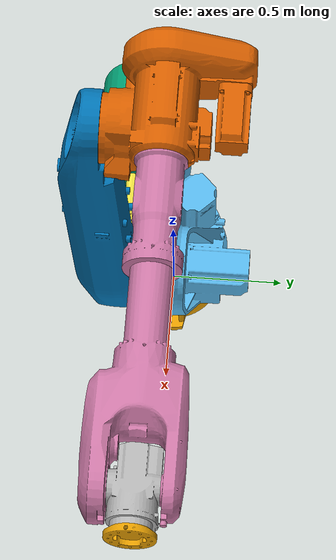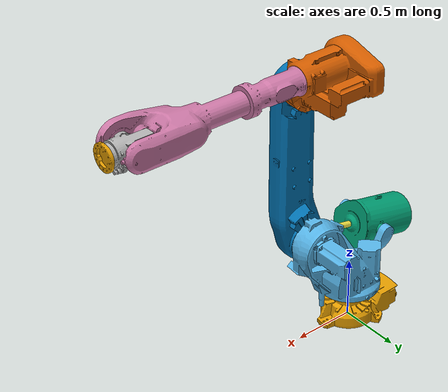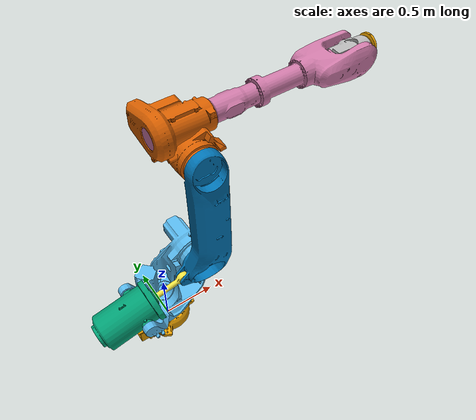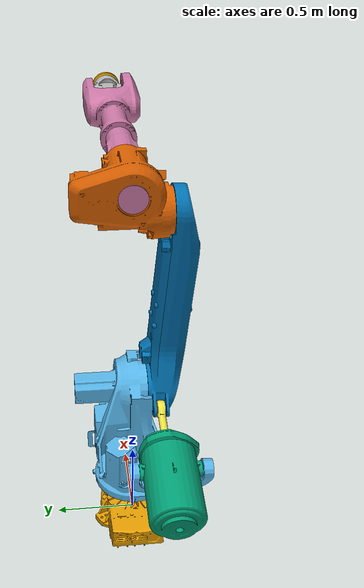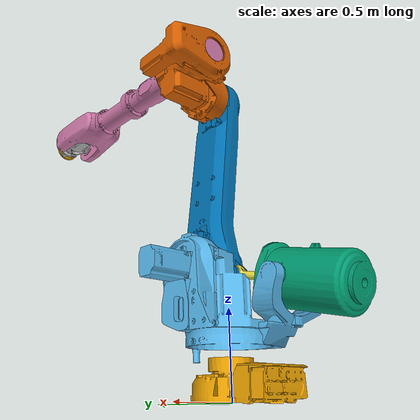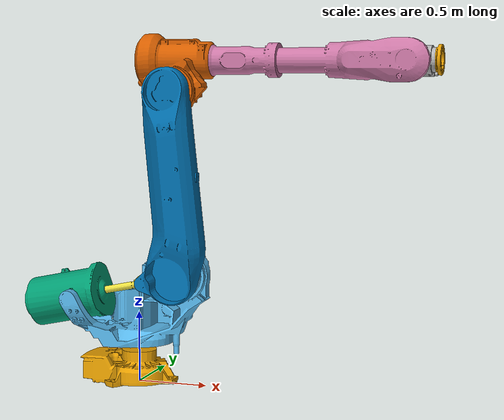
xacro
<?xml version="1.0" ?>
<robot name="abb_irb6700_150_320" xmlns:xacro="http://ros.org/wiki/xacro">
  <xacro:arg name="use_fake_hardware" default="true"/>
  <xacro:property name="use_fake_hardware" value="$(arg use_fake_hardware)"/>
  <xacro:arg name="rws_ip" default="None"/>
  <xacro:property name="rws_ip" value="$(arg rws_ip)"/>
  <xacro:arg name="rws_port" default="80"/>
  <xacro:property name="rws_port" value="$(arg rws_port)"/>
  <xacro:arg name="configure_via_rws" default="true"/>
  <xacro:property name="configure_via_rws" value="$(arg configure_via_rws)"/>

  <!-- Includo il file macro specifico della variante 150kg 320cm -->
  <xacro:include filename="$(find abb_irb6700_support)/urdf/irb6700_150_320_macro.xacro"/>

  <!-- Istanzio la macro senza prefisso -->
  <xacro:abb_irb6700_150_320 prefix=""/>

  <!-- ros2_control -->
  <xacro:include filename="$(find abb_irb6700_support)/urdf/irb6700.ros2_control.xacro" />
  <xacro:abb_ros2_control
    name="ABBMultiInterfaceHardware"
    prefix=""
    use_fake_hardware="${use_fake_hardware}"
    rws_ip="${rws_ip}"
    rws_port="${rws_port}"
    configure_via_rws="${configure_via_rws}"/>
</robot>

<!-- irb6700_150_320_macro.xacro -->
<robot xmlns:xacro="http://ros.org/wiki/xacro">
  <xacro:macro name="abb_irb6700_150_320" params="prefix">
    <xacro:include filename="$(find abb_resources)/urdf/common_materials.xacro"/>

    <!-- link list -->
    <link name="${prefix}base_link">
      <visual>
        <origin xyz="0 0 0" rpy="0 0 0" />
        <geometry>
          <mesh filename="package://abb_irb6700_support/meshes/irb6700/visual/base_link.stl" />
        </geometry>
        <xacro:material_abb_white/>
      </visual>
      <collision>
        <origin xyz="0 0 0" rpy="0 0 0" />
        <geometry>
          <mesh filename="package://abb_irb6700_support/meshes/irb6700/collision/base_link.stl" />
        </geometry>
        <xacro:material_abb_yellow/>
      </collision>
    </link>
    <link name="${prefix}link_1">
      <visual>
        <origin xyz="0 0 0" rpy="0 0 0" />
        <geometry>
          <mesh filename="package://abb_irb6700_support/meshes/irb6700/visual/link_1.stl" />
        </geometry>
        <xacro:material_abb_white/>
      </visual>
      <collision>
        <origin xyz="0 0 0" rpy="0 0 0" />
        <geometry>
          <mesh filename="package://abb_irb6700_support/meshes/irb6700/collision/link_1.stl" />
        </geometry>
        <xacro:material_abb_yellow/>
      </collision>
    </link>
    <link name="${prefix}cylinder">
      <visual>
        <origin xyz="0 0 0" rpy="0 0 0" />
        <geometry>
          <mesh filename="package://abb_irb6700_support/meshes/irb6700/visual/cylinder.stl" />
        </geometry>
        <xacro:material_abb_white/>
      </visual>
      <collision>
        <origin xyz="0 0 0" rpy="0 0 0" />
        <geometry>
          <mesh filename="package://abb_irb6700_support/meshes/irb6700/collision/cylinder.stl" />
        </geometry>
        <xacro:material_abb_yellow/>
      </collision>
    </link>
    <link name="${prefix}piston">
      <visual>
        <origin xyz="0 0 0" rpy="0 0 0" />
        <geometry>
          <mesh filename="package://abb_irb6700_support/meshes/irb6700/visual/piston.stl" />
        </geometry>
        <xacro:material_abb_white/>
      </visual>
      <collision>
        <origin xyz="0 0 0" rpy="0 0 0" />
        <geometry>
          <mesh filename="package://abb_irb6700_support/meshes/irb6700/collision/piston.stl" />
        </geometry>
        <xacro:material_abb_yellow/>
      </collision>
    </link>

    <!-- Link specifici per la variante 150_320 -->
    <link name="${prefix}link_2">
      <visual>
        <origin xyz="-0.32 0 -0.78" rpy="0 0 0" />
        <geometry>
          <mesh filename="package://abb_irb6700_support/meshes/irb6700_150_320/visual/link_2.stl" />
        </geometry>
        <xacro:material_abb_white/>
      </visual>
      <collision>
        <origin xyz="-0.32 0 -0.78" rpy="0 0 0" />
        <geometry>
          <mesh filename="package://abb_irb6700_support/meshes/irb6700_150_320/collision/link_2.stl" />
        </geometry>
        <xacro:material_abb_yellow/>
      </collision>
    </link>
    <link name="${prefix}link_3">
      <visual>
        <origin xyz="-0.32 0 -2.06" rpy="0 0 0" />
        <geometry>
          <mesh filename="package://abb_irb6700_support/meshes/irb6700_150_320/visual/link_3.stl" />
        </geometry>
        <xacro:material_abb_white/>
      </visual>
      <collision>
        <origin xyz="-0.32 0 -2.06" rpy="0 0 0" />
        <geometry>
          <mesh filename="package://abb_irb6700_support/meshes/irb6700_150_320/collision/link_3.stl" />
        </geometry>
        <xacro:material_abb_yellow/>
      </collision>
    </link>
    <link name="${prefix}link_4">
      <visual>
        <origin xyz="-0.32 0 -2.26" rpy="0 0 0" />
        <geometry>
          <mesh filename="package://abb_irb6700_support/meshes/irb6700_150_320/visual/link_4.stl" />
        </geometry>
        <xacro:material_abb_white/>
      </visual>
      <collision>
        <origin xyz="-0.32 0 -2.26" rpy="0 0 0" />
        <geometry>
          <mesh filename="package://abb_irb6700_support/meshes/irb6700_150_320/collision/link_4.stl" />
        </geometry>
        <xacro:material_abb_yellow/>
      </collision>
    </link>

    <link name="${prefix}link_5">
      <visual>
        <origin xyz="0 0 0" rpy="0 0 0" />
        <geometry>
          <mesh filename="package://abb_irb6700_support/meshes/irb6700/visual/link_5.stl" />
        </geometry>
        <xacro:material_abb_white/>
      </visual>
      <collision>
        <origin xyz="0 0 0" rpy="0 0 0" />
        <geometry>
          <mesh filename="package://abb_irb6700_support/meshes/irb6700/collision/link_5.stl" />
        </geometry>
        <xacro:material_abb_yellow/>
      </collision>
    </link>
    <link name="${prefix}link_6">
      <visual>
        <origin xyz="0 0 0" rpy="0 0 0" />
        <geometry>
          <mesh filename="package://abb_irb6700_support/meshes/irb6700/visual/link_6.stl" />
        </geometry>
        <xacro:material_abb_white/>
      </visual>
      <collision>
        <origin xyz="0 0 0" rpy="0 0 0" />
        <geometry>
          <mesh filename="package://abb_irb6700_support/meshes/irb6700/collision/link_6.stl" />
        </geometry>
        <xacro:material_abb_yellow/>
      </collision>
    </link>

    <!-- Giunti: Applicazione delle quote E e D dal manuale tecnico -->
    <joint name="${prefix}joint_1" type="revolute">
      <origin xyz="0 0 0.78" rpy="0 0 0" />
      <parent link="${prefix}base_link" />
      <child link="${prefix}link_1" />
      <axis xyz="0 0 1" />
      <limit lower="-${radians(170)}" upper="${radians(170)}" effort="0" velocity="${radians(100)}" />
    </joint>
    <joint name="${prefix}joint_2" type="revolute">
      <origin xyz="0.32 0 0" rpy="0 0 0" />
      <parent link="${prefix}link_1" />
      <child link="${prefix}link_2" />
      <axis xyz="0 1 0" />
      <limit lower="-${radians(65)}" upper="${radians(85)}" effort="0" velocity="${radians(90)}" />
    </joint>
    <joint name="${prefix}joint_3" type="revolute">
      <!-- Quota E = 1280 mm (1.28 m) -->
      <origin xyz="0 0 1.28" rpy="0 0 0" />
      <parent link="${prefix}link_2" />
      <child link="${prefix}link_3" />
      <axis xyz="0 1 0" />
      <limit lower="-${radians(180)}" upper="${radians(70)}" effort="0" velocity="${radians(90)}" />
    </joint>
    <joint name="${prefix}joint_4" type="revolute">
      <origin xyz="0 0 0.2" rpy="0 0 0" />
      <parent link="${prefix}link_3" />
      <child link="${prefix}link_4" />
      <axis xyz="1 0 0" />
      <limit lower="-${radians(300)}" upper="${radians(300)}" effort="0" velocity="${radians(170)}" />
    </joint>
    <joint name="${prefix}joint_5" type="revolute">
      <!-- Quota D = 1592.5 mm (1.5925 m) -->
      <origin xyz="1.5925 0 0" rpy="0 0 0" />
      <parent link="${prefix}link_4" />
      <child link="${prefix}link_5" />
      <axis xyz="0 1 0" />
      <limit lower="-${radians(130)}" upper="${radians(130)}" effort="0" velocity="${radians(120)}" />
    </joint>
    <joint name="${prefix}joint_6" type="revolute">
      <origin xyz="0.2 0 0" rpy="0 0 0" />
      <parent link="${prefix}link_5" />
      <child link="${prefix}link_6" />
      <axis xyz="1 0 0" />
      <limit lower="-${radians(360)}" upper="${radians(360)}" effort="0" velocity="${radians(190)}" />
    </joint>

    <joint name="${prefix}cylinder_joint" type="revolute">
      <origin xyz="-0.349 -0.194 -0.142" rpy="0 0 0" />
      <parent link="${prefix}link_1" />
      <child link="${prefix}cylinder" />
      <axis xyz="0 1 0" />
      <mimic joint="${prefix}joint_2" multiplier="-0.25"/>
      <limit lower="-${radians(65*0.25)}" upper="${radians(85*0.25)}" effort="0" velocity="100" />
    </joint>
    <joint name="${prefix}piston_joint" type="prismatic">
      <origin xyz="0 0 0" rpy="0.20897 0 -${radians(90)}" />
      <parent link="${prefix}cylinder" />
      <child link="${prefix}piston" />
      <axis xyz="0 1 0" />
      <mimic joint="${prefix}joint_2" multiplier="0.15"/>
      <limit lower="-0.25" upper="0.25" effort="0" velocity="100" />
    </joint>

    <!-- ROS-Industrial 'base' frame: base_link to ABB World Coordinates transform -->
    <link name="${prefix}base" />
    <joint name="${prefix}base_link-base" type="fixed">
      <origin xyz="0 0 0" rpy="0 0 0"/>
      <parent link="${prefix}base_link"/>
      <child link="${prefix}base"/>
    </joint>

    <!-- ROS-Industrial 'flange' frame: attachment point for EEF models -->
    <link name="${prefix}flange"/>
    <joint type="fixed" name="${prefix}joint_6-flange">
      <origin xyz="0 0 0" rpy="0 0 0"/>
      <parent link="${prefix}link_6"/>
      <child link="${prefix}flange"/>
    </joint>

    <!-- ROS-Industrial 'tool0' frame: all-zeros tool frame -->
    <link name="${prefix}tool0" />
    <joint name="${prefix}link_6-tool0" type="fixed">
      <origin xyz="0 0 0" rpy="0 ${radians(90)} 0" />
      <parent link="${prefix}flange" />
      <child link="${prefix}tool0" />
    </joint>
  </xacro:macro>
</robot>
